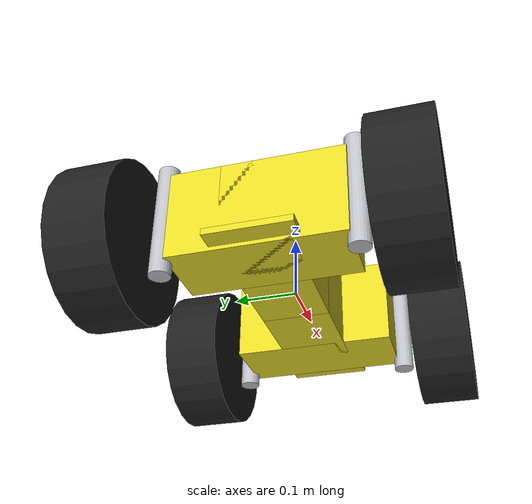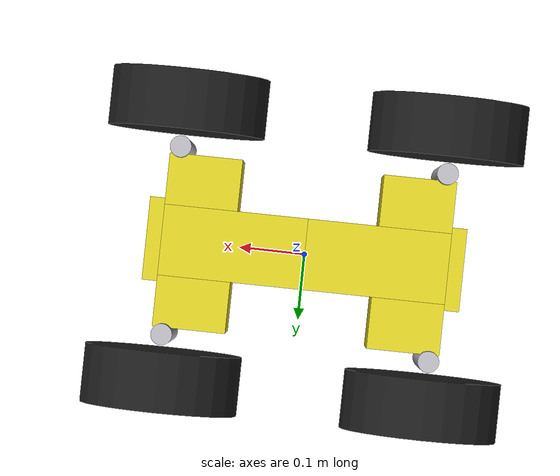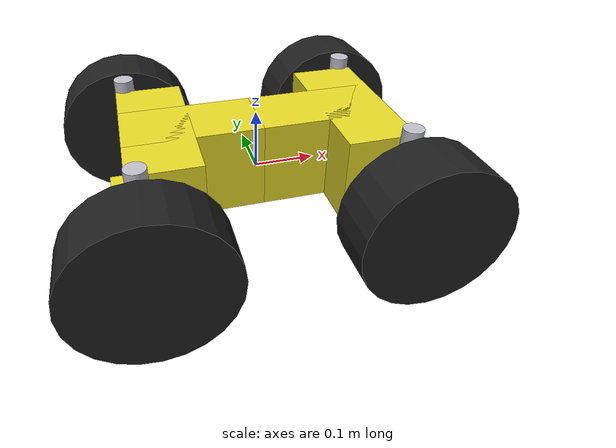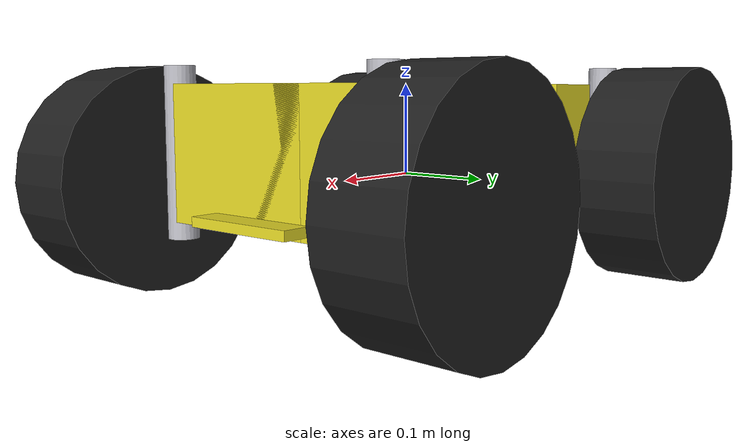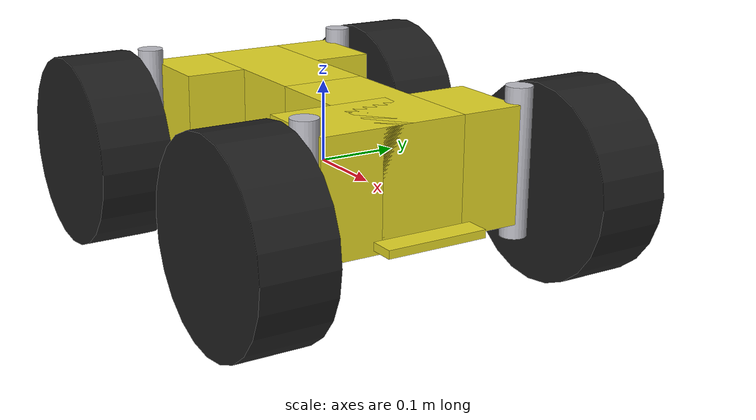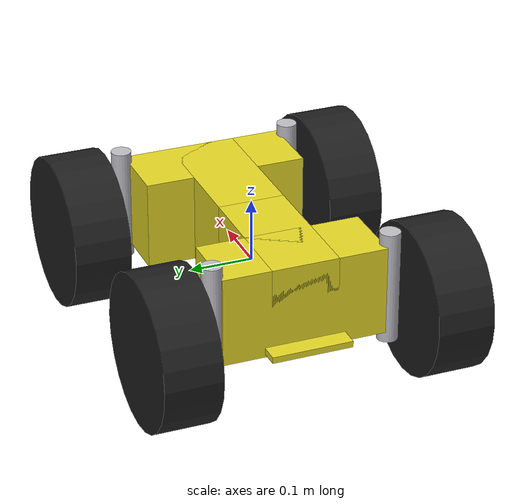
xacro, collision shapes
<?xml version="1.0" encoding="UTF-8"?>
<robot name="earth_rover" xmlns:xacro="http://www.ros.org/wiki/xacro">

	<xacro:property name="M_PI" value="3.1415926535897931" />

	<xacro:property name="fix_base" value="false" />

	<xacro:include filename="00-earth_rover_properties.xacro" />

	<xacro:include filename="base/base.urdf.xacro" />
	<xacro:include filename="base/battery_block.urdf.xacro" />
	<xacro:include filename="wheels/wheels.urdf.xacro" />
	<xacro:include filename="ankles/ankles.urdf.xacro" />

	<xacro:include filename="earth_rover.gazebo.xacro" />

	<link name="base_link" />

	<!-- gazebo doesn't recognise links without mass, but KDL doesn't
	     like the base link to have inertia, so we have this silly
	     situation of a dummy inertia link for a dummy link... -->
	<link name="base_link_inertia">
		<inertial>
			<!-- mass needed for gazebo to recognise link -->
			<mass value="0.001" />
			<inertia ixx="1" iyy="1" izz="1" ixy="0" ixz="0" iyz="0" />
		</inertial>
	</link>

	<joint name="base_link_inertia_joint" type="fixed">
		<parent link="base_link" />
		<child link="base_link_inertia" />
	</joint>

	<base_block name="front_base" parent="base_link" reflect="1" colour="yellow" />
	<base_block name="back_base" parent="base_link" reflect="-1" colour="yellow" />

	<xacro:wheel name="front_left" parent="front_base_link" reflect="1" reflect_y="1" />
	<xacro:wheel name="front_right" parent="front_base_link" reflect="-1" reflect_y="1" />
	<xacro:wheel name="back_left" parent="back_base_link" reflect="1" reflect_y="-1" />
	<xacro:wheel name="back_right" parent="back_base_link" reflect="-1" reflect_y="-1" />

	<xacro:ankle name="front_left" parent="front_base_link" reflect="1" reflect_y="1" />
	<xacro:ankle name="front_right" parent="front_base_link" reflect="-1" reflect_y="1" />
	<xacro:ankle name="back_left" parent="back_base_link" reflect="1" reflect_y="-1" />
	<xacro:ankle name="back_right" parent="back_base_link" reflect="-1" reflect_y="-1" />

	<xacro:earth_rover_gazebo_tags />

</robot>

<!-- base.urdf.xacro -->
<robot xmlns:xacro="http://www.ros.org/wiki/xacro">

	<xacro:include filename="00-base_properties.xacro" />

	<xacro:macro name="base_block" params="name parent reflect colour">
		<link name="${name}_link">
			<inertial>
				<!-- from solid edge base_block.asm -->
				<origin xyz="0.01925 0 -0.00534" />
				<mass value="1.072" />
				<inertia ixx="0.008" iyy="0.011" izz="0.013" ixy="0.000" ixz="0.000" iyz="0.000" />
			</inertial>
			<visual>
				<origin rpy="0 0 ${M_PI if reflect == -1 else 0}" />
				<geometry>
					<mesh filename="package://earth_rover_description/meshes/base_block.dae" />
				</geometry>
				<material name="${colour}" />
			</visual>
			<collision>
				<geometry>
					<box size="${base_x} ${base_y} ${base_z}" />
				</geometry>
			</collision>
			<collision>
				<origin xyz="${reflect*(base_x/2 - shoulder_x/2)} 0 0" />
				<geometry>
					<box size="${shoulder_x} ${shoulder_y} ${base_z}" />
				</geometry>
			</collision>
			<collision>
				<!-- handle -->
				<origin xyz="${reflect*(base_x/2 + 0.015)} 0 -.06" />
				<geometry>
					<box size=".03 .128 .01" />
				</geometry>
			</collision>
		</link>

		<gazebo reference="${name}_link">
			<selfCollide>false</selfCollide>
		</gazebo>

		<joint name="${name}_hinge" type="fixed">
			<parent link="${parent}" />
			<child link="${name}_link" />
			<origin xyz="${reflect*base_x/2} 0 ${hinge_offset}" />
		</joint>
	</xacro:macro>

</robot>

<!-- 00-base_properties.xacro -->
<robot xmlns:xacro="http://www.ros.org/wiki/xacro">

	<xacro:property name="base_x" value="0.2148" />
	<xacro:property name="base_y" value="0.106" />
	<xacro:property name="base_z" value="0.142" />

	<xacro:property name="shoulder_x" value="0.109" />
	<xacro:property name="shoulder_y" value="0.26" />

	<xacro:property name="hinge_offset" value=".029" />

</robot>

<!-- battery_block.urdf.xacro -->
<robot xmlns:xacro="http://www.ros.org/wiki/xacro">

	<!-- battery block -->
	<link name="battery_block_link">
		<inertial>
			<!-- from Solid Edge "Battery Block V2 - 22Ah - 24V.asm" -->
			<origin xyz="-0.09568 0 0.00658" />
			<mass value="2.401" />
			<inertia ixx="0.002" iyy="-0.001" izz="-0.001" ixy="0" ixz="0" iyz="0" />
		</inertial>
		<visual>
			<geometry>
				<mesh filename="package://earth_rover_description/meshes/battery_block.dae" />
			</geometry>
		</visual>
	</link>

	<gazebo reference="battery_block_link">
		<selfCollide>false</selfCollide>
	</gazebo>

	<joint name="battery_block_joint" type="fixed">
		<parent link="front_base_link" />
		<child link="battery_block_link" />
		<origin xyz="${base_x/2} 0 0" />
	</joint>

</robot>

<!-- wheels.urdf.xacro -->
<robot xmlns:xacro="http://www.ros.org/wiki/xacro">

	<xacro:include filename="00-wheels_properties.xacro" />

	<xacro:macro name="wheel" params="name parent reflect reflect_y">

		<link name="${name}_wheel">
			<inertial>
				<!-- based on thick-walled cylinder -->
				<origin xyz="0 ${reflect*wheel_length/2} 0" rpy="${M_PI/2} 0 0" />
				<mass value="1.24" />
				<inertia ixx="${wheel_Ixx_Iyy}" iyy="${wheel_Ixx_Iyy}"  izz="${wheel_Izz}" ixy="0.0" ixz="0.0" iyz="0.0" />
			</inertial>
			<visual>
				<xacro:if value="${reflect == -1}">
					<origin rpy="0 0 ${M_PI}" />
				</xacro:if>
				<geometry>
					<mesh filename="package://earth_rover_description/meshes/wheel.dae" />
				</geometry>
				<material name="black" />
			</visual>
			<collision>
				<origin xyz="0 ${reflect*wheel_length/2} 0" rpy="${M_PI/2} 0 0" />
				<geometry>
					<cylinder radius="${wheel_radius}" length="${wheel_length}" />
				</geometry>
			</collision>
		</link>

		<gazebo reference="${name}_wheel">
			<material>Gazebo/DarkGrey</material>
		</gazebo>

		<!-- Wheel Transmition & Joints -->
		<transmission name="${name}_wheel_transmission">
			<type>transmission_interface/SimpleTransmission</type>
			<actuator name="${name}_wheel_motor" />
			<joint name="${name}_wheel_joint">
				<hardwareInterface>hardware_interface/VelocityJointInterface</hardwareInterface>
			</joint>
		</transmission>

		<joint name="${name}_wheel_joint" type="continuous">
			<parent link="${name}_ankle" />
			<child link="${name}_wheel" />
			<axis xyz="0 1 0" />
			<origin xyz="0 ${reflect*wheel_offset_y} ${wheel_offset_z}" />
		</joint>

	</xacro:macro>
</robot>

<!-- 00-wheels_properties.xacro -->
<robot xmlns:xacro="http://www.ros.org/wiki/xacro">

	<xacro:property name="angle_limit_cw" value="${M_PI/4}" />
	<xacro:property name="angle_limit_ccw" value="${M_PI/4}" />

	<xacro:property name="ankle_offset_x" value="0.0914" />
	<xacro:property name="ankle_offset_y" value="0.140" />
	<xacro:property name="ankle_offset_z" value="0.051" />

	<xacro:property name="wheel_offset_y" value=".027" />
	<xacro:property name="wheel_offset_z" value=".021" />

	<xacro:property name="wheel_radius" value=".12" />
	<xacro:property name="wheel_inner_radius" value=".045" />
	<xacro:property name="wheel_length" value=".09" />
	<xacro:property name="wheel_mass" value="1.24" />

	<!-- from standard equation for thick-walled cylinder -->
	<xacro:property name="wheel_Ixx_Iyy" value="${wheel_mass*(3*(wheel_radius**2 + wheel_inner_radius**2) + wheel_length**2)/12}" />
	<xacro:property name="wheel_Izz" value="${wheel_mass*(wheel_radius**2 + wheel_inner_radius**2)/2}" />

</robot>

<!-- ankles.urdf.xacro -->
<robot xmlns:xacro="http://www.ros.org/wiki/xacro">

    <xacro:include filename="00-ankles_properties.xacro" />

    <xacro:macro name="ankle" params="name parent reflect reflect_y">

		<link name="${name}_ankle">
			<inertial>
				<!-- from Solid Edge "Steering Block.asm" -->
				<origin xyz="0 ${reflect*(-wheel_offset_y + 0.02493)} ${wheel_offset_z + 0.05588}" />
				<mass value="0.271" />
				<inertia ixx="0.01" iyy="0.01" izz="0.01" ixy="0" ixz="0" iyz="0" />
			</inertial>
			<visual>
				<origin xyz="0 ${reflect*wheel_offset_y} ${wheel_offset_z}" rpy="0 0 ${M_PI if reflect == -1 else 0}"/>
				<geometry>
					<mesh filename="package://earth_rover_description/meshes/steering_block.dae" />
				</geometry>
				<material name="silver"/>
			</visual>
			<collision>
				<origin xyz="0 0 ${ankle_offset_z}" />
				<geometry>
					<cylinder radius="0.016" length=".18"/>
				</geometry>
			</collision>
		</link>

		<gazebo reference="${name}_ankle">
			<selfCollide>false</selfCollide>
		</gazebo>

		<!-- Ankle Transmission & Joints -->
		<joint name="${name}_ankle_joint" type="revolute">
			<parent link="${parent}" />
			<child link="${name}_ankle" />
			<axis xyz="0 0 1" />
			<origin xyz="${reflect_y*ankle_offset_x} ${reflect*ankle_offset_y} -${ankle_offset_z}" />
			<limit lower="-${angle_limit_ccw}" upper="${angle_limit_cw}" effort="7" velocity="15" /> <!-- guesses -->
		</joint>

		<transmission name="${name}_ankle_transmission">
			<type>transmission_interface/SimpleTransmission</type>
			<actuator name="${name}_ankle_motor" />
			<joint name="${name}_ankle_joint">
				<hardwareInterface>hardware_interface/VelocityJointInterface</hardwareInterface>
			</joint>
		</transmission>

    </xacro:macro>
</robot>
